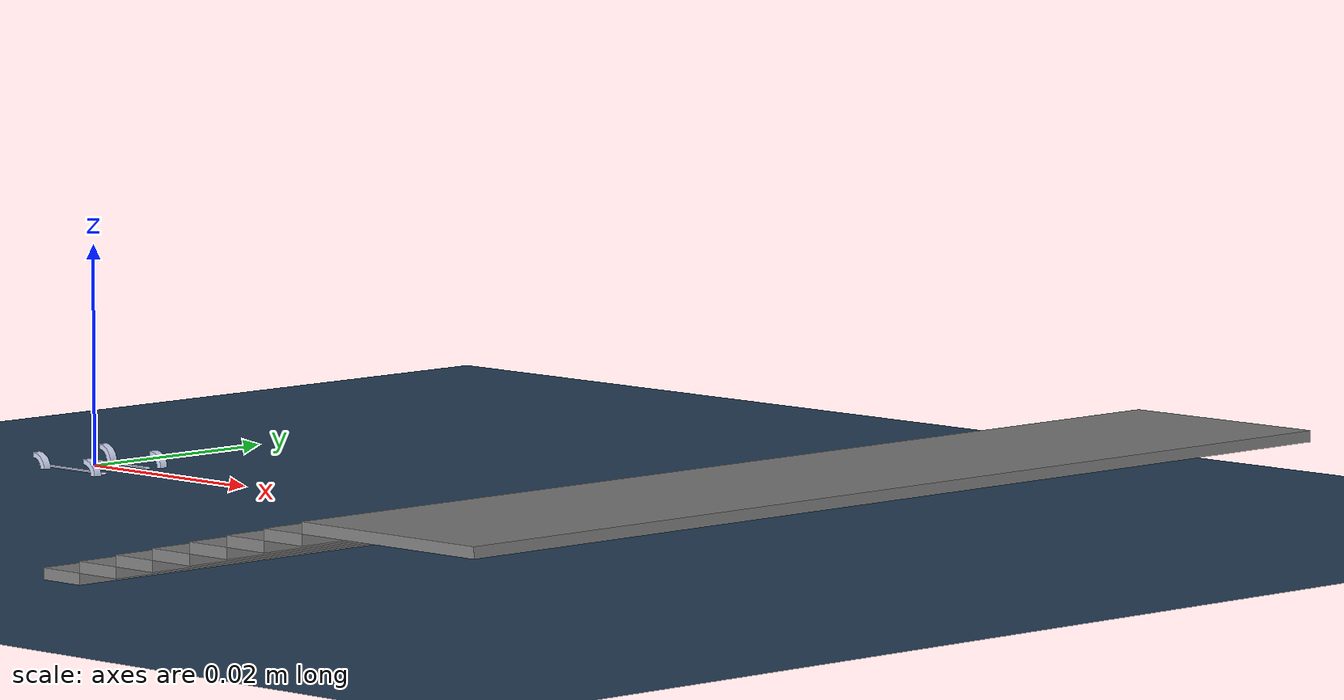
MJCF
<mujoco model="scene">
    <include file="robot_2.xml" />

    <visual>
        <headlight diffuse="0.6 0.6 0.6" ambient="0.3 0.3 0.3" specular="0 0 0" />
        <rgba haze="0.15 0.25 0.35 1" />
        <global azimuth="160" elevation="-20" />
    </visual>

    <asset>
        <texture type="skybox" builtin="gradient" rgb1="0.3 0.5 0.7" rgb2="0 0 0" width="512" height="3072" />
        <texture type="2d" name="groundplane" builtin="checker" mark="edge" rgb1="0.2 0.3 0.4" rgb2="0.1 0.2 0.3" markrgb="0.8 0.8 0.8" width="300" height="300" />
        <material name="groundplane" texture="groundplane" texuniform="true" texrepeat="5 5" reflectance="0.2" />
    </asset>

    <worldbody>
        <light pos="0 0 3.5" dir="0 0 -1" directional="true" />
        <geom name="floor" size="0 0 0.05" pos="0 0 0" type="plane" material="groundplane" />
    <geom name="step_0" type="box" size="0.00225 0.05 0.0005" pos="0.052250000000000005 0.0 0.0005" rgba="0.5 0.5 0.5 1" /><geom name="step_1" type="box" size="0.00225 0.05 0.0005" pos="0.05675 0.0 0.0015" rgba="0.5 0.5 0.5 1" /><geom name="step_2" type="box" size="0.00225 0.05 0.0005" pos="0.061250000000000006 0.0 0.0025" rgba="0.5 0.5 0.5 1" /><geom name="step_3" type="box" size="0.00225 0.05 0.0005" pos="0.06575 0.0 0.0035" rgba="0.5 0.5 0.5 1" /><geom name="step_4" type="box" size="0.00225 0.05 0.0005" pos="0.07025 0.0 0.0045000000000000005" rgba="0.5 0.5 0.5 1" /><geom name="step_5" type="box" size="0.00225 0.05 0.0005" pos="0.07475000000000001 0.0 0.0055" rgba="0.5 0.5 0.5 1" /><geom name="step_6" type="box" size="0.00225 0.05 0.0005" pos="0.07925 0.0 0.006500000000000001" rgba="0.5 0.5 0.5 1" /><geom name="step_7" type="box" size="0.01 0.05 0.0005" pos="0.0915 0.0 0.0075" rgba="0.5 0.5 0.5 1" /></worldbody>
</mujoco>

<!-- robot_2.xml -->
<!-- Generated using onshape-to-robot -->
<!-- Onshape https://cad.onshape.com/documents/fb40679e5085125a52f9d8c2/w/bc70b1a5b80ef34e9536dda2/e/fa25152c06c6fd7e13daf977 -->
<mujoco model="mulit_milli_quad">
  <compiler angle="radian" meshdir="assets" autolimits="true"/>
  <default>
    <default class="mulit_milli_quad">
      <default class="magnet">
        <geom mass="9e-6" type="mesh" mesh="magnet" material="magnet_material"/>
      </default>
      <default class="leg">
        <geom mass="5e-7" type="mesh" mesh="right_leg_leg" material="right_leg_leg_material"/>
      </default>
      <default class="leg_box">
        <geom mass="3e-6" type="mesh" mesh="right_leg_box" material="right_leg_box_material"/>
      </default>
      <default class="body">
        <geom mass="5.3e-5" type="mesh" mesh="body" material="body_material"/>
      </default>
    </default>
  </default>
  <worldbody>
    <!-- Link body -->
    <body name="body" pos="0 0 0" quat="1 0 0 0" childclass="mulit_milli_quad">
      <freejoint name="body_freejoint"/>
      <geom class="body" pos="0 0 -0.00268252" quat="0 0 1 0"/>  <!-- FLIPPED 180° around Y-axis (roll) + Z offset -->
      <!-- Link right_leg_box -->
      <body name="right_leg_box" pos="0.00342 -0.00298 -0.00134126" quat="0.707107 0.707107 -0 -0">
        <joint axis="0 0 1" name="FR" type="hinge"/>
        <geom class="leg" pos="0 0 0" quat="6.12323e-17 0 0 1"/>
        <geom class="leg" pos="0 0 0" quat="1 0 0 0"/>
        <geom class="leg_box" pos="0 0 0" quat="1 0 0 0"/>
        <geom class="magnet" pos="0 0 0.00074" quat="0.707107 -0.707107 0 0"/>

      </body>
      <!-- Link right_leg_box_2 -->
      <body name="right_leg_box_2" pos="0.00342 0.00298 -0.00134126" quat="0 0 0.707107 0.707107">
        <joint axis="0 0 1" name="FL" type="hinge"/>
        <geom class="leg_box" pos="0 0 0" quat="1 0 0 0"/>
        <geom class="magnet" pos="4.33681e-19 0 0.00074" quat="3.83323e-17 -0 0.707107 0.707107"/>
        <geom class="leg" pos="-4.33681e-19 -4.77049e-18 0.002" quat="1.44518e-33 -0 1 -0"/>
        <geom class="leg" pos="-8.67362e-19 3.90313e-18 0.002" quat="-0 -1 -9.08232e-17 -0"/>

      </body>
      <!-- Link right_leg_box_3 -->
      <body name="right_leg_box_3" pos="-0.00342 -0.00298 -0.00134126" quat="0.707107 0.707107 -0 -0">
        <joint axis="0 0 1" name="BR" type="hinge"/>
        <geom class="magnet" pos="4.33681e-19 0 0.00074" quat="0.707107 -0.707107 0 0"/>
        <geom class="leg_box" pos="0 0 0" quat="1 0 0 0"/>
        <geom class="leg" pos="0 -2.1684e-19 0" quat="6.12323e-17 0 0 1"/>
        <geom class="leg" pos="0 0 0" quat="1 0 0 0"/>

      </body>
      <!-- Link right_leg_box_4 -->
      <body name="right_leg_box_4" pos="-0.00342 0.00298 -0.00134126" quat="0 0 0.707107 0.707107">
        <joint axis="0 0 1" name="BL" type="hinge"/>
        <geom class="leg" pos="-4.33681e-19 -3.90313e-18 0.002" quat="1.44518e-33 -0 1 -0"/>
        <geom class="magnet" pos="4.33681e-19 4.33681e-19 0.00074" quat="3.83323e-17 -0 0.707107 0.707107"/>
        <geom class="leg_box" pos="0 0 0" quat="1 0 0 0"/>
        <geom class="leg" pos="4.33681e-19 5.20417e-18 0.002" quat="-0 -1 -9.08232e-17 -0"/>

      </body>
    </body>
  </worldbody>
  <asset>
    <mesh file="magnet.stl"/>
    <mesh file="right_leg_leg.stl"/>
    <mesh file="right_leg_box.stl"/>
    <mesh file="body.stl"/>
    <material name="body_material" rgba="0.796078 0.823529 0.937255 1"/>
    <material name="right_leg_leg_material" rgba="0.796078 0.823529 0.937255 1"/>
    <material name="right_leg_box_material" rgba="0.796078 0.823529 0.937255 1"/>
    <material name="magnet_material" rgba="0.615686 0.811765 0.929412 1"/>
  </asset>
</mujoco>
